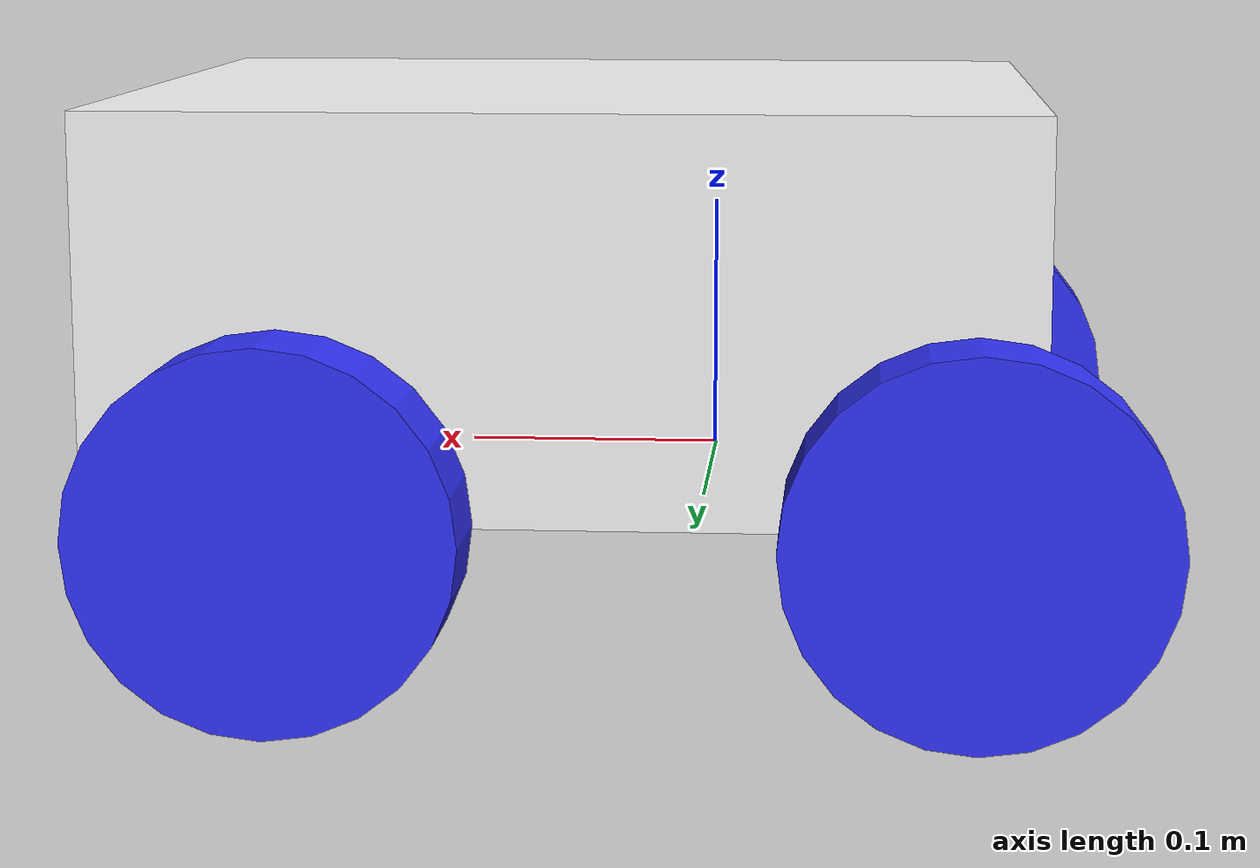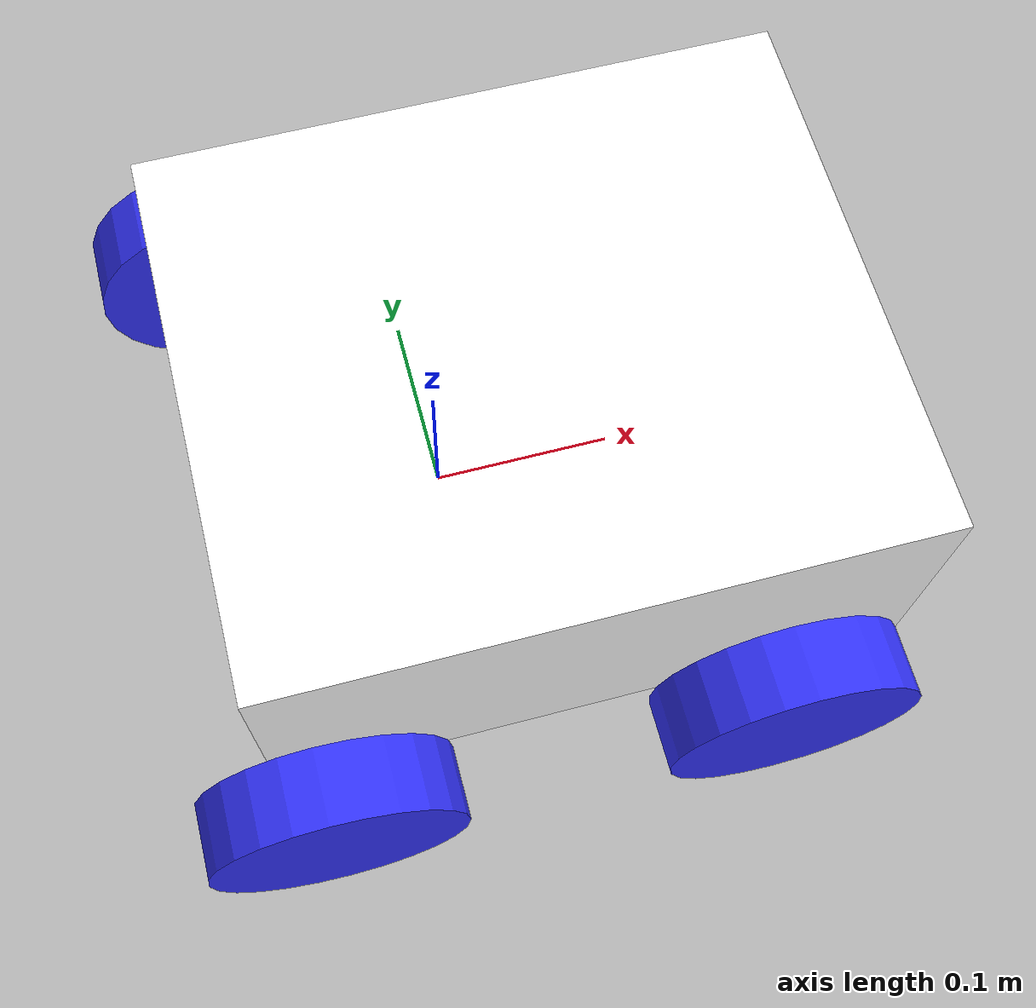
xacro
<?xml version="1.0"?>
<robot xmlns:xacro="http://www.ros.org/wiki/xacro">
  <xacro:include filename="inertial_macros.xacro"/>

  <material name="white">
    <color rgba= "1 1 1 1" />
  </material>

  <material name="orange">
    <color rgba= "1 0.3 0.1 1" />
  </material>

  <material name="blue">
    <color rgba= "0.2 0.2 1 1" />
  </material>

  <material name="black">
    <color rgba= "0 0 0 1" />
  </material>

  <!--BASE_LINK-->
  <link name="base_link">

  </link>

  <!--CHASSIS LINK-->
  <joint name="chassis_joint" type= "fixed">
    <parent link= "base_link"/>
    <child link= "chassis"/>
    <origin xyz="-0.1 0 0"/>
  </joint>

  <link name= "chassis">
    <visual>
      <origin xyz="0.15 0 0.072"/>
      <geometry>
        <box size="0.35 0.3 0.15"/>
      </geometry>
      <material name="white" />
    </visual>
     <collision>
      <origin xyz="0.15 0 0.072"/>
      <geometry>
        <box size="0.35 0.3 0.15"/>
      </geometry>
    </collision>
    <xacro:inertial_box mass="0.5" x="0.3" y="0.3" z="0.15">
      <origin xyz="0.15 0 0.072" rpy="0 0 0"/>
    </xacro:inertial_box>
  </link>
  <gazebo reference="chassis">
    <material>Gazebo/White</material>
  </gazebo>

  <!--FRONT LEFT WHEEL LINK-->
  <joint name="front_left_wheel_joint" type="continuous">
    <parent link="base_link"/>
    <child link="front_left_wheel"/>
    <origin xyz="0.15 0.175 0" rpy="-${pi/2} 0 0"/>
    <axis xyz="0 0 1"/>
  </joint>

  <link name="front_left_wheel">
    <visual>
      <geometry>
        <cylinder radius="0.07" length="0.04"/>
      </geometry>
      <material name="blue"/>
    </visual>
    <collision>
      <geometry>
        <cylinder radius="0.07" length="0.04"/>
      </geometry>
    </collision>
    <xacro:inertial_cylinder mass="0.1" length="0.04" radius="0.05">
      <origin xyz="0 0 0" rpy="0 0 0"/>
    </xacro:inertial_cylinder>
  </link>
  <gazebo reference="front_left_wheel">
    <material>Gazebo/Blue</material>
  </gazebo>

  <!--FRONT RIGHT WHEEL LINK-->
  <joint name="front_right_wheel_joint" type="continuous">
    <parent link="base_link"/>
    <child link="front_right_wheel"/>
    <origin xyz="0.15 -0.175 0" rpy="${pi/2} 0 0"/>
    <axis xyz="0 0 -1"/>
  </joint>

  <link name="front_right_wheel">
    <visual>
      <geometry>
        <cylinder radius="0.07" length="0.04"/>
      </geometry>
      <material name="blue"/>
    </visual>
    <collision>
      <geometry>
        <cylinder radius="0.07" length="0.04"/>
      </geometry>
    </collision>
    <xacro:inertial_cylinder mass="0.1" length="0.04" radius="0.05">
      <origin xyz="0 0 0" rpy="0 0 0"/>
    </xacro:inertial_cylinder>
  </link>
  <gazebo reference="front_right_wheel">
    <material>Gazebo/Blue</material>
  </gazebo>

  <!--REAR LEFT WHEEL LINK-->
  <joint name="rear_left_wheel_joint" type="continuous">
    <parent link="base_link"/>
    <child link="rear_left_wheel"/>
    <origin xyz="-0.1 0.175 0" rpy="-${pi/2} 0 0"/>
    <axis xyz="0 0 1"/>
  </joint>

  <link name="rear_left_wheel">
    <visual>
      <geometry>
        <cylinder radius="0.07" length="0.04"/>
      </geometry>
      <material name="blue"/>
    </visual>
    <collision>
      <geometry>
        <cylinder radius="0.07" length="0.04"/>
      </geometry>
    </collision>
    <xacro:inertial_cylinder mass="0.1" length="0.04" radius="0.05">
      <origin xyz="0 0 0" rpy="0 0 0"/>
    </xacro:inertial_cylinder>
  </link>
  <gazebo reference="rear_left_wheel">
    <material>Gazebo/Blue</material>
  </gazebo>

  <!--REAR RIGHT WHEEL LINK-->
  <joint name="rear_right_wheel_joint" type="continuous">
    <parent link="base_link"/>
    <child link="rear_right_wheel"/>
    <origin xyz="-0.1 -0.175 0" rpy="${pi/2} 0 0"/>
    <axis xyz="0 0 -1"/>
  </joint>

  <link name="rear_right_wheel">
    <visual>
      <geometry>
        <cylinder radius="0.07" length="0.04"/>
      </geometry>
      <material name="blue"/>
    </visual>
    <collision>
      <geometry>
        <cylinder radius="0.07" length="0.04"/>
      </geometry>
    </collision>
    <xacro:inertial_cylinder mass="0.1" length="0.04" radius="0.05">
      <origin xyz="0 0 0" rpy="0 0 0"/>
    </xacro:inertial_cylinder>
  </link>
  <gazebo reference="rear_right_wheel">
    <material>Gazebo/Blue</material>
  </gazebo>

</robot>

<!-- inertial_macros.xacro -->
<robot xmlns:xacro="http://www.ros.org/wiki/xacro">

    <xacro:macro name="inertial_sphere" params="mass radius *origin">
        <inertial>
            <xacro:insert_block name="origin"/>
            <mass value="${mass}" />
            <inertia ixx="${(2/5) * mass * (radius*radius)}" ixy="0.0" ixz="0.0"
                    iyy="${(2/5) * mass * (radius*radius)}" iyz="0.0"
                    izz="${(2/5) * mass * (radius*radius)}" />
        </inertial>
    </xacro:macro>

    <xacro:macro name="inertial_box" params="mass x y z *origin">
        <inertial>
            <xacro:insert_block name="origin"/>
            <mass value="${mass}" />
            <inertia ixx="${(1/12) * mass * (y*y+z*z)}" ixy="0.0" ixz="0.0"
                    iyy="${(1/12) * mass * (x*x+z*z)}" iyz="0.0"
                    izz="${(1/12) * mass * (x*x+y*y)}" />
        </inertial>
    </xacro:macro>

    <xacro:macro name="inertial_cylinder" params="mass length radius *origin">
        <inertial>
            <xacro:insert_block name="origin"/>
            <mass value="${mass}" />
            <inertia ixx="${(1/12) * mass * (3*radius*radius + length*length)}" ixy="0.0" ixz="0.0"
                    iyy="${(1/12) * mass * (3*radius*radius + length*length)}" iyz="0.0"
                    izz="${(1/2) * mass * (radius*radius)}" />
        </inertial>
    </xacro:macro>

</robot>
